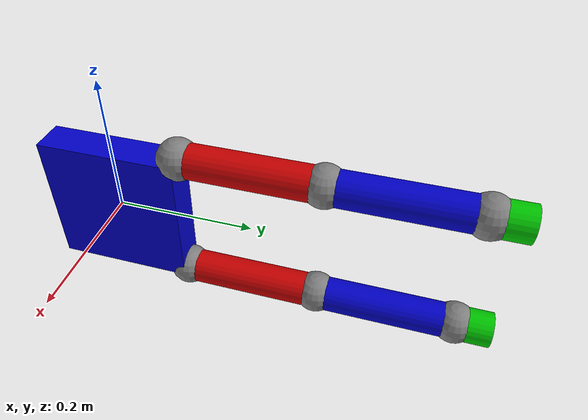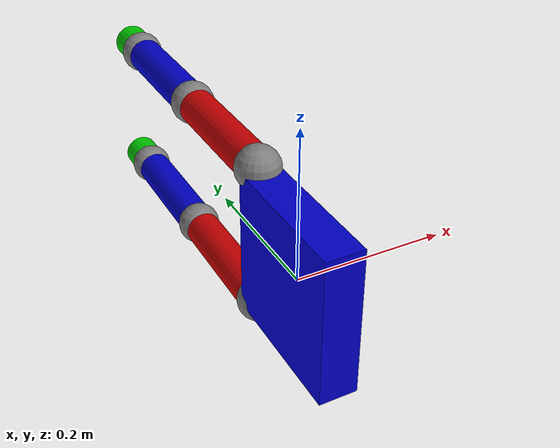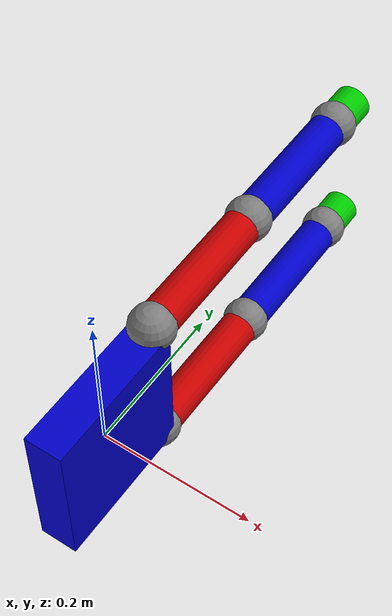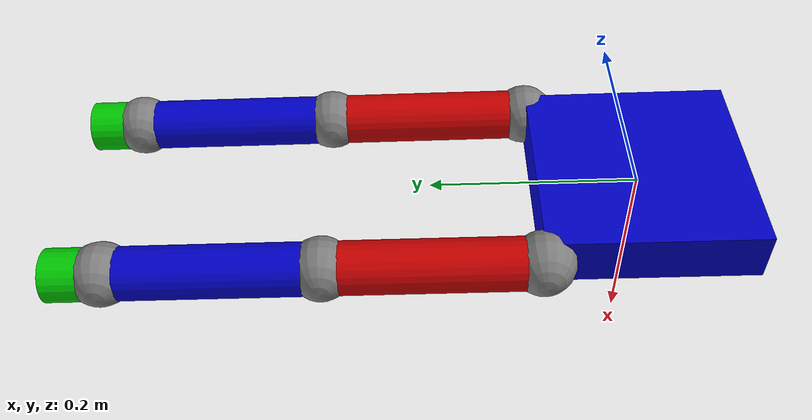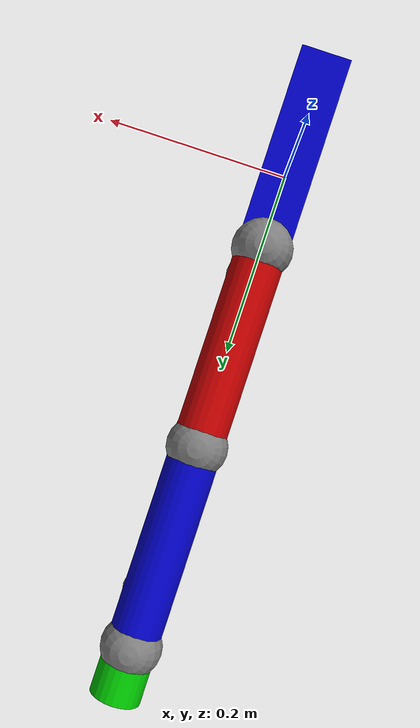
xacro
<?xml version="1.0"?>
<robot name="ff6dof" xmlns:xacro="http://www.ros.org/wiki/xacro">

  <!-- Include materials -->
  <material name="Red">
    <color rgba="0.8 0.0 0.0 1.0"/>
  </material>
  <material name="Blue">
    <color rgba="0.0 0.0 0.8 1.0"/>
  </material>
  <material name="Green">
    <color rgba="0.0 0.8 0.0 1.0"/>
  </material>
  <material name="Gray">
    <color rgba="0.5 0.5 0.5 1.0"/>
  </material>

  <!-- Constants -->
  <xacro:property name="M_PI" value="3.14159"/>
  <!-- Lengths for the left arm -->
  <xacro:property name="larm1_len" value="0.20" />
  <xacro:property name="larm2_len" value="0.20" />
  <xacro:property name="larm3_len" value="0.05" />
  <xacro:property name="larm_width" value="0.025" />
  <xacro:property name="larm_ball_width" value="0.03" />
  <!-- Lengths for the left leg -->
  <xacro:property name="lleg1_len" value="0.20" />
  <xacro:property name="lleg2_len" value="0.20" />
  <xacro:property name="lleg3_len" value="0.05" />
  <xacro:property name="lleg_width" value="0.025" />
  <xacro:property name="lleg_ball_width" value="0.03" />
  <!-- Lengths for the torso -->
  <xacro:property name="torso_xlen" value="0.05"/>
  <xacro:property name="torso_ylen" value="0.2"/>
  <xacro:property name="torso_zlen" value="0.2"/>

  <!--        TORAX LINK: where the arms/legs are placed            -->

  <link name="base_link" />
  <joint name="base_link_fixedjoint" type="fixed">
    <parent link="base_link"/>
    <child link="torso"/>
    <origin rpy="0 0 0" xyz="0 0 0"/>
    <axis xyz="0 0 0"/>
  </joint>

  <link name="torso">
    <visual>
      <origin xyz=" 0 0 0"  rpy="0 0 0"/>
      <geometry>
        <box size="${torso_xlen} ${torso_ylen} ${torso_zlen}"/>
      </geometry>
      <material name="Blue" />
    </visual>
  </link>

  <!--        LEFT ARM LINKS                                        -->

  <joint name="larm_j1" type="revolute">
    <parent link="torso"/>
    <child link="larm1"/>
    <origin xyz="0 ${torso_ylen/2} ${torso_zlen/2}" rpy="0 0 0" />
    <axis xyz="1 0 0" />
    <limit effort="300" velocity="1" lower="-1" upper="2.75"/>
  </joint>

  <link name="larm1" >
    <visual>
      <origin xyz="0 ${larm1_len/2} 0" rpy="${M_PI/2} 0 0" />
      <geometry>
        <cylinder radius="${larm_width}" length="${larm1_len}"/>
      </geometry>
      <material name="Red" />
    </visual>
  </link>

  <joint name="larm_j2" type="revolute">
    <parent link="larm1"/>
    <child link="larm2"/>
    <origin xyz="0 ${larm1_len} 0" rpy="0 0 0" />
    <axis xyz="1 0 0" />
    <limit effort="300" velocity="1" lower="-2.5" upper="2.5"/>
  </joint>

  <link name="larm2" >
    <visual>
      <origin xyz="0 ${larm2_len/2} 0" rpy="${M_PI/2} 0 0" />
      <geometry>
        <cylinder radius="${larm_width}" length="${larm2_len}"/>
      </geometry>
      <material name="Blue" />
    </visual>
  </link>

  <joint name="larm_j3" type="revolute">
    <parent link="larm2"/>
    <child link="larm3"/>
    <origin xyz="0 ${larm2_len} 0" rpy="0 0 0" />
    <axis xyz="1 0 0" />
    <limit effort="300" velocity="1" lower="-2.5" upper="2.5"/>
  </joint>

  <link name="larm3" >
    <visual>
      <origin xyz="0 ${larm3_len/2} 0" rpy="${M_PI/2} 0 0" />
      <geometry>
        <cylinder radius="${larm_width}" length="${larm3_len}"/>
      </geometry>
      <material name="Green" />
    </visual>
  </link>

  <!-- Balls located at joint positions (only for visual purposes) -->
  <joint name="larm1_ball_joint" type="fixed">
    <parent link="larm1"/>
    <child link="larm1_ball"/>
    <origin rpy="0 0 0" xyz="0 0 0"/>
    <axis xyz="0 0 0"/>
  </joint>
  <link name="larm1_ball">
    <visual>
      <origin xyz="0 0 0" rpy="0 0 0" />
      <geometry>
        <sphere radius="${larm_ball_width}"/>
      </geometry>
      <material name="Gray" />
    </visual>
  </link>

  <joint name="larm2_ball_joint" type="fixed">
    <parent link="larm2"/>
    <child link="larm2_ball"/>
    <origin rpy="0 0 0" xyz="0 0 0"/>
    <axis xyz="0 0 0"/>
  </joint>
  <link name="larm2_ball">
    <visual>
      <origin xyz="0 0 0" rpy="0 0 0" />
      <geometry>
        <sphere radius="${larm_ball_width}"/>
      </geometry>
      <material name="Gray" />
    </visual>
  </link>

  <joint name="larm3_ball_joint" type="fixed">
    <parent link="larm3"/>
    <child link="larm3_ball"/>
    <origin rpy="0 0 0" xyz="0 0 0"/>
    <axis xyz="0 0 0"/>
  </joint>
  <link name="larm3_ball">
    <visual>
      <origin xyz="0 0 0" rpy="0 0 0" />
      <geometry>
        <sphere radius="${larm_ball_width}"/>
      </geometry>
      <material name="Gray" />
    </visual>
  </link>

  <!--        LEFT LEG LINKS                                        -->

  <joint name="lleg_j1" type="revolute">
    <parent link="torso"/>
    <child link="lleg1"/>
    <origin xyz="0 ${torso_ylen/2} -${torso_zlen/2}" rpy="0 0 0" />
    <axis xyz="1 0 0" />
    <limit effort="300" velocity="1" lower="-2.75" upper="1"/>
  </joint>

  <link name="lleg1" >
    <visual>
      <origin xyz="0 ${lleg1_len/2} 0" rpy="${M_PI/2} 0 0" />
      <geometry>
        <cylinder radius="${lleg_width}" length="${lleg1_len}"/>
      </geometry>
      <material name="Red" />
    </visual>
  </link>

  <joint name="lleg_j2" type="revolute">
    <parent link="lleg1"/>
    <child link="lleg2"/>
    <origin xyz="0 ${lleg1_len} 0" rpy="0 0 0" />
    <axis xyz="1 0 0" />
    <limit effort="300" velocity="1" lower="-2.5" upper="2.5"/>
  </joint>

  <link name="lleg2" >
    <visual>
      <origin xyz="0 ${lleg2_len/2} 0" rpy="${M_PI/2} 0 0" />
      <geometry>
        <cylinder radius="${lleg_width}" length="${lleg2_len}"/>
      </geometry>
      <material name="Blue" />
    </visual>
  </link>

  <joint name="lleg_j3" type="revolute">
    <parent link="lleg2"/>
    <child link="lleg3"/>
    <origin xyz="0 ${lleg2_len} 0" rpy="0 0 0" />
    <axis xyz="1 0 0" />
    <limit effort="300" velocity="1" lower="-2.5" upper="2.5"/>
  </joint>

  <link name="lleg3" >
    <visual>
      <origin xyz="0 ${lleg3_len/2} 0" rpy="${M_PI/2} 0 0" />
      <geometry>
        <cylinder radius="${lleg_width}" length="${lleg3_len}"/>
      </geometry>
      <material name="Green" />
    </visual>
  </link>

  <!-- Balls located at joint positions (only for visual purposes) -->
  <joint name="lleg1_ball_joint" type="fixed">
    <parent link="lleg1"/>
    <child link="lleg1_ball"/>
    <origin rpy="0 0 0" xyz="0 0 0"/>
    <axis xyz="0 0 0"/>
  </joint>
  <link name="lleg1_ball">
    <visual>
      <origin xyz="0 0 0" rpy="0 0 0" />
      <geometry>
        <sphere radius="${lleg_ball_width}"/>
      </geometry>
      <material name="Gray" />
    </visual>
  </link>

  <joint name="lleg2_ball_joint" type="fixed">
    <parent link="lleg2"/>
    <child link="lleg2_ball"/>
    <origin rpy="0 0 0" xyz="0 0 0"/>
    <axis xyz="0 0 0"/>
  </joint>
  <link name="lleg2_ball">
    <visual>
      <origin xyz="0 0 0" rpy="0 0 0" />
      <geometry>
        <sphere radius="${lleg_ball_width}"/>
      </geometry>
      <material name="Gray" />
    </visual>
  </link>

  <joint name="lleg3_ball_joint" type="fixed">
    <parent link="lleg3"/>
    <child link="lleg3_ball"/>
    <origin rpy="0 0 0" xyz="0 0 0"/>
    <axis xyz="0 0 0"/>
  </joint>
  <link name="lleg3_ball">
    <visual>
      <origin xyz="0 0 0" rpy="0 0 0" />
      <geometry>
        <sphere radius="${lleg_ball_width}"/>
      </geometry>
      <material name="Gray" />
    </visual>
  </link>

</robot>
